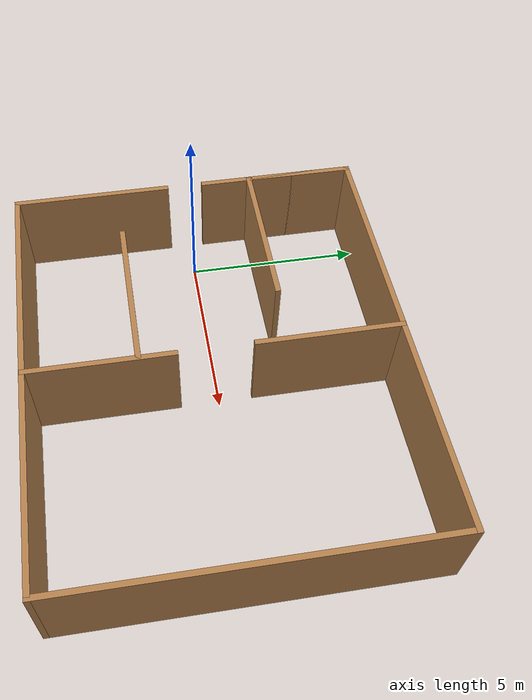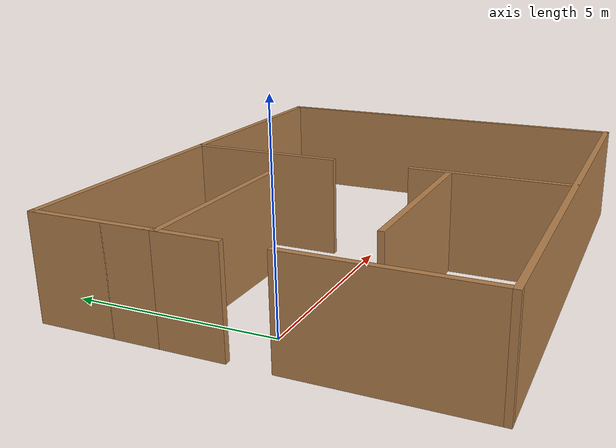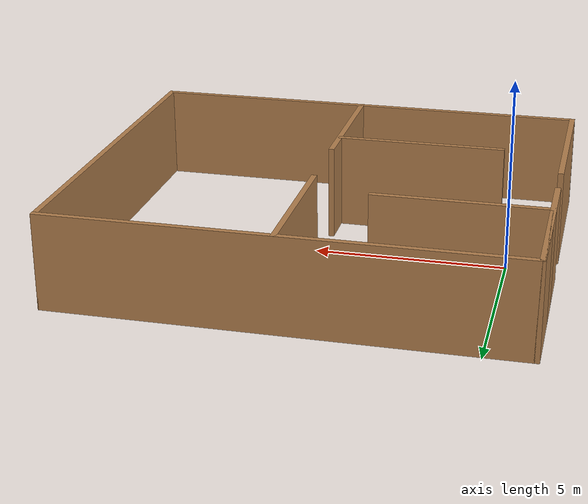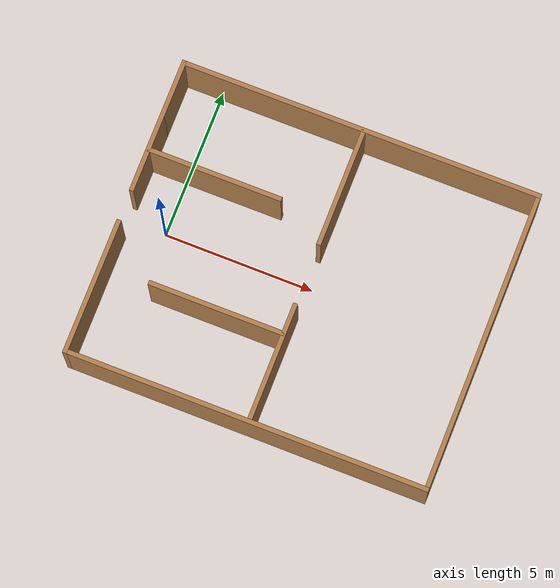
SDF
<?xml version='1.0'?>
<sdf version='1.7'>
  <model name='world0401'>
    <pose>4.71167 -0.063817 0 0 -0 0</pose>
    <link name='Wall_10'>
      <collision name='Wall_10_Collision'>
        <geometry>
          <box>
            <size>4.5 0.15 2.5</size>
          </box>
        </geometry>
        <pose>0 0 1.25 0 -0 0</pose>
      </collision>
      <visual name='Wall_10_Visual'>
        <pose>0 0 1.25 0 -0 0</pose>
        <geometry>
          <box>
            <size>4.5 0.15 2.5</size>
          </box>
        </geometry>
        <material>
          <script>
            <uri>file://media/materials/scripts/gazebo.material</uri>
            <name>Gazebo/Wood</name>
          </script>
          <ambient>1 1 1 1</ambient>
        </material>
        <meta>
          <layer>0</layer>
        </meta>
      </visual>
      <pose>-5.925 -2.75 0 0 -0 1.5708</pose>
    </link>
    <link name='Wall_15'>
      <collision name='Wall_15_Collision'>
        <geometry>
          <box>
            <size>2.977 0.15 2.5</size>
          </box>
        </geometry>
        <pose>0 0 1.25 0 -0 0</pose>
      </collision>
      <visual name='Wall_15_Visual'>
        <pose>0 0 1.25 0 -0 0</pose>
        <geometry>
          <box>
            <size>2.977 0.15 2.5</size>
          </box>
        </geometry>
        <material>
          <script>
            <uri>file://media/materials/scripts/gazebo.material</uri>
            <name>Gazebo/Wood</name>
          </script>
          <ambient>1 1 1 1</ambient>
        </material>
        <meta>
          <layer>0</layer>
        </meta>
      </visual>
      <pose>-5.925 3.5115 0 0 -0 -1.5708</pose>
    </link>
    <link name='Wall_19'>
      <collision name='Wall_19_Collision'>
        <geometry>
          <box>
            <size>4 0.15 2.5</size>
          </box>
        </geometry>
        <pose>0 0 1.25 0 -0 0</pose>
      </collision>
      <visual name='Wall_19_Visual'>
        <pose>0 0 1.25 0 -0 0</pose>
        <geometry>
          <box>
            <size>4 0.15 2.5</size>
          </box>
        </geometry>
        <material>
          <script>
            <uri>file://media/materials/scripts/gazebo.material</uri>
            <name>Gazebo/Wood</name>
          </script>
          <ambient>1 1 1 1</ambient>
        </material>
        <meta>
          <layer>0</layer>
        </meta>
      </visual>
      <pose>0.112814 2.98919 0 0 -0 -1.5708</pose>
    </link>
    <link name='Wall_21'>
      <collision name='Wall_21_Collision'>
        <geometry>
          <box>
            <size>4 0.15 2.5</size>
          </box>
        </geometry>
        <pose>0 0 1.25 0 -0 0</pose>
      </collision>
      <visual name='Wall_21_Visual'>
        <pose>0 0 1.25 0 -0 0</pose>
        <geometry>
          <box>
            <size>4 0.15 2.5</size>
          </box>
        </geometry>
        <material>
          <script>
            <uri>file://media/materials/scripts/gazebo.material</uri>
            <name>Gazebo/Wood</name>
          </script>
          <ambient>1 1 1 1</ambient>
        </material>
        <meta>
          <layer>0</layer>
        </meta>
      </visual>
      <pose>0.126039 -2.98726 0 0 -0 -1.5708</pose>
    </link>
    <link name='Wall_23'>
      <collision name='Wall_23_Collision'>
        <geometry>
          <box>
            <size>4.5 0.15 2.5</size>
          </box>
        </geometry>
        <pose>0 0 1.25 0 -0 0</pose>
      </collision>
      <visual name='Wall_23_Visual'>
        <pose>0 0 1.25 0 -0 0</pose>
        <geometry>
          <box>
            <size>4.5 0.15 2.5</size>
          </box>
        </geometry>
        <material>
          <script>
            <uri>file://media/materials/scripts/gazebo.material</uri>
            <name>Gazebo/Wood</name>
          </script>
          <ambient>1 1 1 1</ambient>
        </material>
        <meta>
          <layer>0</layer>
        </meta>
      </visual>
      <pose>-3.72286 1.92637 0 0 -0 0</pose>
    </link>
    <link name='Wall_25'>
      <collision name='Wall_25_Collision'>
        <geometry>
          <box>
            <size>4.5 0.15 2.5</size>
          </box>
        </geometry>
        <pose>0 0 1.25 0 -0 0</pose>
      </collision>
      <visual name='Wall_25_Visual'>
        <pose>0 0 1.25 0 -0 0</pose>
        <geometry>
          <box>
            <size>4.5 0.15 2.5</size>
          </box>
        </geometry>
        <material>
          <script>
            <uri>file://media/materials/scripts/gazebo.material</uri>
            <name>Gazebo/Wood</name>
          </script>
          <ambient>1 1 1 1</ambient>
        </material>
        <meta>
          <layer>0</layer>
        </meta>
      </visual>
      <pose>-2.09286 -2.00491 0 0 -0 3.14159</pose>
    </link>
    <link name='Wall_5'>
      <collision name='Wall_5_Collision'>
        <geometry>
          <box>
            <size>4.5 0.15 2.5</size>
          </box>
        </geometry>
        <pose>0 0 1.25 0 -0 0</pose>
      </collision>
      <visual name='Wall_5_Visual'>
        <pose>0 0 1.25 0 -0 0</pose>
        <geometry>
          <box>
            <size>4.5 0.15 2.5</size>
          </box>
        </geometry>
        <material>
          <script>
            <uri>file://media/materials/scripts/gazebo.material</uri>
            <name>Gazebo/Wood</name>
          </script>
          <ambient>1 1 1 1</ambient>
        </material>
        <meta>
          <layer>0</layer>
        </meta>
      </visual>
      <pose>-5.925 2.75 0 0 -0 1.5708</pose>
    </link>
    <link name='Wall_6'>
      <collision name='Wall_6_Collision'>
        <geometry>
          <box>
            <size>12 0.15 2.5</size>
          </box>
        </geometry>
        <pose>0 0 1.25 0 -0 0</pose>
      </collision>
      <visual name='Wall_6_Visual'>
        <pose>0 0 1.25 0 -0 0</pose>
        <geometry>
          <box>
            <size>12 0.15 2.5</size>
          </box>
        </geometry>
        <material>
          <script>
            <uri>file://media/materials/scripts/gazebo.material</uri>
            <name>Gazebo/Wood</name>
          </script>
          <ambient>1 1 1 1</ambient>
        </material>
        <meta>
          <layer>0</layer>
        </meta>
      </visual>
      <pose>-0 4.925 0 0 -0 0</pose>
    </link>
    <link name='Wall_7'>
      <collision name='Wall_7_Collision'>
        <geometry>
          <box>
            <size>10 0.15 2.5</size>
          </box>
        </geometry>
        <pose>0 0 1.25 0 -0 0</pose>
      </collision>
      <visual name='Wall_7_Visual'>
        <pose>0 0 1.25 0 -0 0</pose>
        <geometry>
          <box>
            <size>10 0.15 2.5</size>
          </box>
        </geometry>
        <material>
          <script>
            <uri>file://media/materials/scripts/gazebo.material</uri>
            <name>Gazebo/Wood</name>
          </script>
          <ambient>1 1 1 1</ambient>
        </material>
        <meta>
          <layer>0</layer>
        </meta>
      </visual>
      <pose>5.925 -0 0 0 -0 -1.5708</pose>
    </link>
    <link name='Wall_8'>
      <collision name='Wall_8_Collision'>
        <geometry>
          <box>
            <size>12 0.15 2.5</size>
          </box>
        </geometry>
        <pose>0 0 1.25 0 -0 0</pose>
      </collision>
      <visual name='Wall_8_Visual'>
        <pose>0 0 1.25 0 -0 0</pose>
        <geometry>
          <box>
            <size>12 0.15 2.5</size>
          </box>
        </geometry>
        <material>
          <script>
            <uri>file://media/materials/scripts/gazebo.material</uri>
            <name>Gazebo/Wood</name>
          </script>
          <ambient>1 1 1 1</ambient>
        </material>
        <meta>
          <layer>0</layer>
        </meta>
      </visual>
      <pose>-0 -4.925 0 0 -0 3.14159</pose>
    </link>
    <static>1</static>
  </model>
</sdf>
